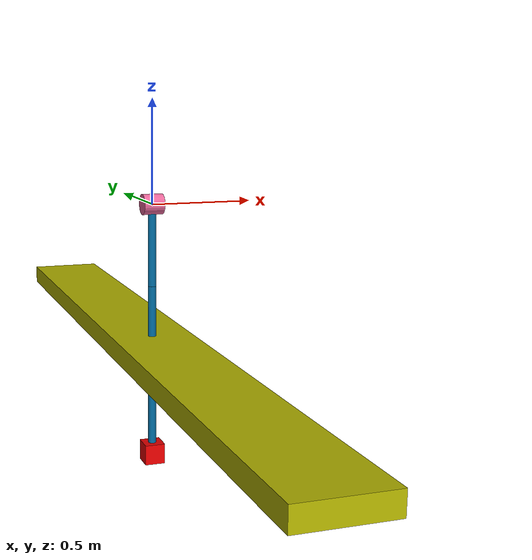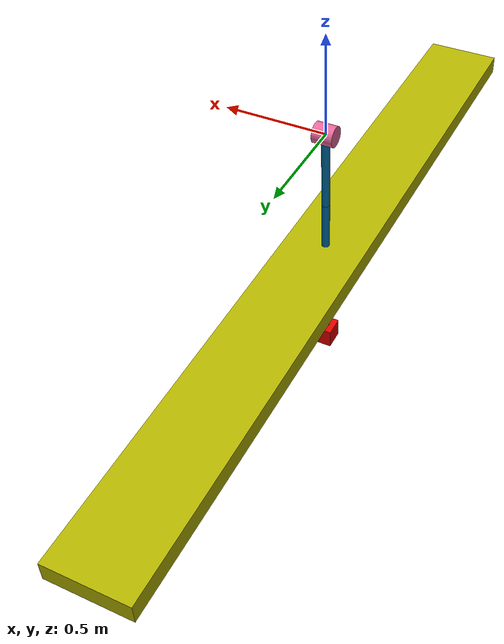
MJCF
<mujoco model="Planar-Pusher with Contact">
    <include file="../common.xml"/>
    <include file="planar_pusher.xml" />

    <size memory="10M"/>

    <custom>
        <numeric name="agent_planner" data="1" />
        <numeric name="agent_horizon" data="1.0" />
        <numeric name="agent_timestep" data="0.01" />
        <numeric name="sampling_sample_width" data="0.01" />
        <numeric name="sampling_control_width" data="0.015" />
        <numeric name="sampling_spline_points" data="10" />
        <numeric name="sampling_exploration" data="0.5" />
        <numeric name="gradient_spline_points" data="10" />
        <numeric name="residual_Goal" data="0.8 -1.5 1.5" />
    </custom>

    <contact>
        <exclude body1="base" body2="body0"/>
    </contact>

    <keyframe>
        <key name="home" qpos="0.0785739 0.875724 0.683122"/>
    </keyframe>

    <sensor>
        <user name="load_horz" dim="1" user="2 5.0 0 100.0 0.01"/>
        <user name="load_vert" dim="1" user="2 5.0 0 10.0 0.01"/>
        <user name="load_ori" dim="4" user="2 5.0 0 10.0 0.01"/>
        <user name="load_vel" dim="3" user="2 5.0 0 10.0 0.01"/>
        <framepos name="trace0" objtype="site" objname="load"/>
        <framepos name="position" objtype="site" objname="load"/>
        <framelinvel name="velocity" objtype="site" objname="load"/>
    </sensor>

</mujoco>

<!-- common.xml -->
<mujoco>

  <visual>
    <headlight ambient=".4 .4 .4" diffuse=".8 .8 .8" specular="0.1 0.1 0.1"/>
    <map znear=".01"/>
    <quality shadowsize="2048"/>
    <global elevation="-15"/>
  </visual>

  <asset>
    <texture name="blue_grid" type="2d" builtin="checker" rgb1=".02 .14 .44" rgb2=".27 .55 1" width="300" height="300" mark="edge" markrgb="1 1 1"/>
    <material name="blue_grid" texture="blue_grid" texrepeat="1 1" texuniform="true" reflectance=".2"/>

    <texture name="grey_grid" type="2d" builtin="checker" rgb1=".26 .26 .26" rgb2=".6 .6 .6" width="300" height="300" mark="edge" markrgb="1 1 1"/>
    <material name="grey_grid" texture="grey_grid" texrepeat="1 1" texuniform="true" reflectance=".2"/>
    <texture name="skybox" type="skybox" builtin="gradient" rgb1=".66 .79 1" rgb2=".9 .91 .93" width="800" height="800"/>

    <material name="self" rgba=".7 .5 .3 1"/>
    <material name="self_default" rgba=".7 .5 .3 1"/>
    <material name="self_highlight" rgba="0 .5 .3 1"/>
    <material name="effector" rgba=".7 .4 .2 1"/>
    <material name="effector_default" rgba=".7 .4 .2 1"/>
    <material name="effector_highlight" rgba="0 .5 .3 1"/>
    <material name="decoration" rgba=".2 .6 .3 1"/>
    <material name="eye" rgba="0 .2 1 1"/>
    <material name="target" rgba=".6 .3 .3 1"/>
    <material name="target_default" rgba=".6 .3 .3 1"/>
    <material name="target_highlight" rgba=".6 .3 .3 .4"/>
    <material name="site" rgba=".5 .5 .5 .3"/>
  </asset>
</mujoco>

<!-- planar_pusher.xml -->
<mujoco model="reacher">
    <compiler angle="radian" inertiafromgeom="true"/>
    <default>
    </default>
    <worldbody>
        <light name="light" pos="0 0 6"/>

        <!-- Shelf -->
        <geom name="s1" size="0.2 2  0.05" pos="0 0.0 -0.7" type="box" friction="0.0 0.005 0.0001" rgba="0.7 0.7 0.0 1" contype="3" conaffinity="3"/>

        <!-- Arm -->
        <body name="base" euler="0 1.57 0">
            <geom fromto="0 0 -0.05 0 0 0.05" name="base" rgba="0.9 0.4 0.6 1" size=".05" type="cylinder" contype="1" conaffinity="0"/>
            <body name="body0" pos="0 0 0">
                <joint axis="0 0 1" limited="false" name="joint0" pos="0 0 0" type="hinge"/>
                <geom fromto="0 0 0 0.400 0 0" name="link0" rgba="0.0 0.4 0.6 1" size=".02" type="capsule" contype="0" conaffinity="1"/>
                <body name="body1" pos="0.400 0 0">
                    <joint axis="0 0 1" limited="true" name="joint1" pos="0 0 0" range="-3.0 3.0" type="hinge"/>
                    <geom fromto="0 0 0 0.400 0 0" name="link1" rgba="0.0 0.4 0.6 1" size=".02" type="capsule" contype="1" conaffinity="0"/>
                    <body name="body2" pos="0.400 0 0">
                        <joint axis="0 0 1" limited="true" name="joint2" pos="0 0 0" range="-3.0 3.0" type="hinge"/>
                        <geom fromto="0 0 0 0.400 0 0" name="link2" rgba="0.0 0.4 0.6 1" size=".02" type="capsule" contype="0" conaffinity="1"/>
                        <body name="body3" pos="0.450 0 0">
                            <geom name="link3" rgba="0.9 0.0 0.0 1" size="0.05 0.05 0.05" type="box" contype="1" conaffinity="0"/>
                            <site name="load" pos="0 0 0"/>
                        </body>
                    </body>
                </body>
            </body>
        </body>
    </worldbody>

    <actuator>
        <motor name="motor0" joint="joint0" ctrlrange="-13 13" ctrllimited="true"/>
        <motor name="motor1" joint="joint1" ctrlrange="-12 12" ctrllimited="true"/>
        <motor name="motor2" joint="joint2" ctrlrange="-12 12" ctrllimited="true"/>
    </actuator>
</mujoco>
